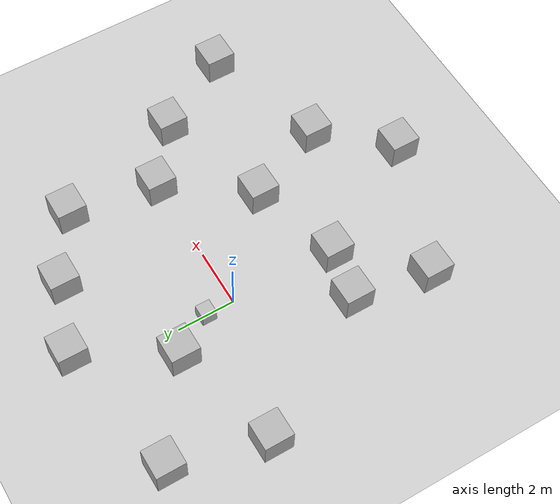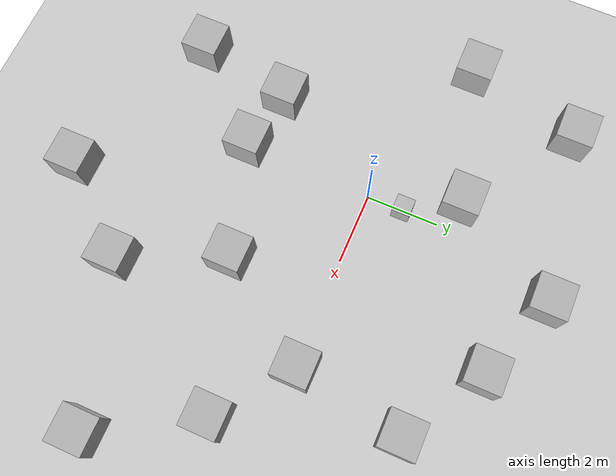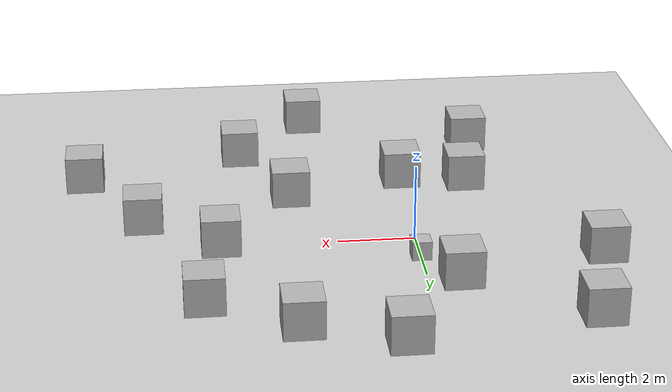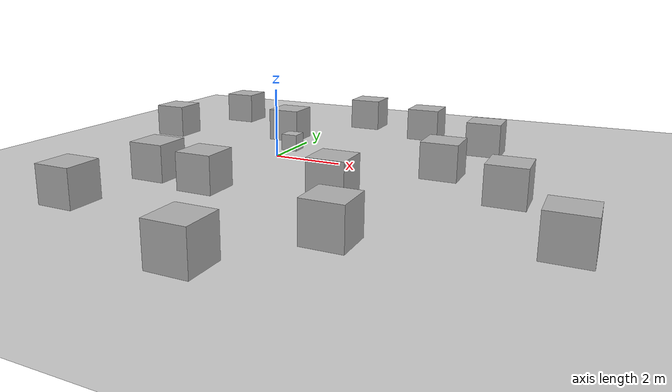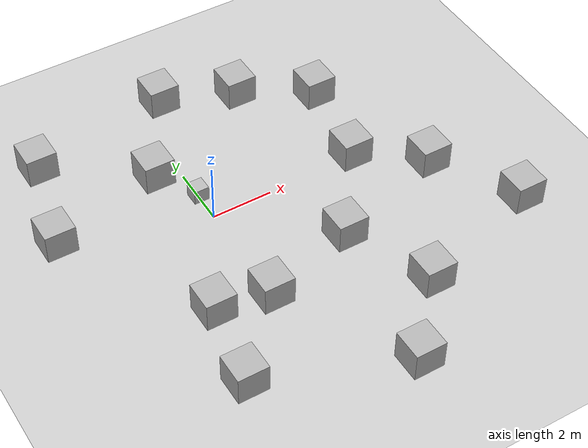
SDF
<sdf version='1.10'>
  <world name='empty'>
    <physics name='1ms' type='ignored'>
      <max_step_size>0.001</max_step_size>
      <real_time_factor>1.0</real_time_factor>
    </physics>
    <plugin name='gz::sim::systems::Physics' filename='gz-sim-physics-system'/>
    <plugin name='gz::sim::systems::UserCommands' filename='gz-sim-user-commands-system'/>
    <plugin name='gz::sim::systems::SceneBroadcaster' filename='gz-sim-scene-broadcaster-system'/>
    <plugin name='gz::sim::systems::Sensors' filename='gz-sim-sensors-system'>
      <render_engine>ogre2</render_engine>
    </plugin>
    <plugin name='gz::sim::systems::Contact' filename='gz-sim-contact-system'/>
    <gravity>0 0 -9.8000000000000007</gravity>
    <magnetic_field>5.5644999999999998e-06 2.2875799999999999e-05 -4.2388400000000002e-05</magnetic_field>
    <atmosphere type='adiabatic'/>
    <scene>
      <ambient>0.400000006 0.400000006 0.400000006 1</ambient>
      <background>0.699999988 0.699999988 0.699999988 1</background>
      <shadows>true</shadows>
    </scene>
    <model name='ground_plane'>
      <static>true</static>
      <link name='link'>
        <collision name='collision'>
          <geometry>
            <plane>
              <normal>0 0 1</normal>
              <size>100 100</size>
            </plane>
          </geometry>
          <surface>
            <friction>
              <ode>
                <mu>100.0</mu>
                <mu2>100.0</mu2>
              </ode>
            </friction>
            <bounce/>
            <contact/>
          </surface>
        </collision>
        <visual name='visual'>
          <geometry>
            <plane>
              <normal>0 0 1</normal>
              <size>100 100</size>
            </plane>
          </geometry>
          <material>
            <ambient>0.800000012 0.800000012 0.800000012 1</ambient>
            <diffuse>0.800000012 0.800000012 0.800000012 1</diffuse>
            <specular>0.800000012 0.800000012 0.800000012 1</specular>
          </material>
        </visual>
        <pose>0 0 0 0 0 0</pose>
        <inertial>
          <pose>0 0 0 0 0 0</pose>
          <mass>1</mass>
          <inertia>
            <ixx>1</ixx>
            <ixy>0</ixy>
            <ixz>0</ixz>
            <iyy>1</iyy>
            <iyz>0</iyz>
            <izz>1</izz>
          </inertia>
        </inertial>
        <enable_wind>false</enable_wind>
      </link>
      <pose>0 0 0 0 0 0</pose>
      <self_collide>false</self_collide>
    </model>

    <model name='box'>
      <pose>3.2825211979544768 4.4584938294825296 0.49999999990199806 6.2287739151293738e-22 9.3279666454713669e-22 -3.6315533669320137e-22</pose>
      <link name='box_link'>
        <inertial>
          <inertia>
            <ixx>0.16666</ixx>
            <ixy>0</ixy>
            <ixz>0</ixz>
            <iyy>0.16666</iyy>
            <iyz>0</iyz>
            <izz>0.16666</izz>
          </inertia>
          <mass>1</mass>
          <pose>0 0 0 0 0 0</pose>
        </inertial>
        <collision name='box_collision'>
          <geometry>
            <box>
              <size>1 1 1</size>
            </box>
          </geometry>
          <surface>
            <friction>
              <ode/>
            </friction>
            <bounce/>
            <contact/>
          </surface>
        </collision>
        <visual name='box_visual'>
          <geometry>
            <box>
              <size>1 1 1</size>
            </box>
          </geometry>
          <material>
            <ambient>0.300000012 0.300000012 0.300000012 1</ambient>
            <diffuse>0.699999988 0.699999988 0.699999988 1</diffuse>
            <specular>1 1 1 1</specular>
          </material>
        </visual>
        <pose>0 0 0 0 0 0</pose>
        <enable_wind>false</enable_wind>
      </link>
      <static>false</static>
      <self_collide>false</self_collide>
    </model>
    <model name='box_0'>
      <pose>3.0095113535359594 -2.6911043344628873 0.49999999990199806 6.2287739151293738e-22 9.3279666454713669e-22 -3.6315533669320137e-22</pose>
      <link name='box_link'>
        <inertial>
          <inertia>
            <ixx>0.16666</ixx>
            <ixy>0</ixy>
            <ixz>0</ixz>
            <iyy>0.16666</iyy>
            <iyz>0</iyz>
            <izz>0.16666</izz>
          </inertia>
          <mass>1</mass>
          <pose>0 0 0 0 0 0</pose>
        </inertial>
        <collision name='box_collision'>
          <geometry>
            <box>
              <size>1 1 1</size>
            </box>
          </geometry>
          <surface>
            <friction>
              <ode/>
            </friction>
            <bounce/>
            <contact/>
          </surface>
        </collision>
        <visual name='box_visual'>
          <geometry>
            <box>
              <size>1 1 1</size>
            </box>
          </geometry>
          <material>
            <ambient>0.300000012 0.300000012 0.300000012 1</ambient>
            <diffuse>0.699999988 0.699999988 0.699999988 1</diffuse>
            <specular>1 1 1 1</specular>
          </material>
        </visual>
        <pose>0 0 0 0 0 0</pose>
        <enable_wind>false</enable_wind>
      </link>
      <static>false</static>
      <self_collide>false</self_collide>
    </model>
    <model name='box_1'>
      <pose>-0.80716172694558086 2.3926742482846386 0.49999999990199806 6.2287739151293738e-22 9.3279666454713669e-22 -3.6315533669320137e-22</pose>
      <link name='box_link'>
        <inertial>
          <inertia>
            <ixx>0.16666</ixx>
            <ixy>0</ixy>
            <ixz>0</ixz>
            <iyy>0.16666</iyy>
            <iyz>0</iyz>
            <izz>0.16666</izz>
          </inertia>
          <mass>1</mass>
          <pose>0 0 0 0 0 0</pose>
        </inertial>
        <collision name='box_collision'>
          <geometry>
            <box>
              <size>1 1 1</size>
            </box>
          </geometry>
          <surface>
            <friction>
              <ode/>
            </friction>
            <bounce/>
            <contact/>
          </surface>
        </collision>
        <visual name='box_visual'>
          <geometry>
            <box>
              <size>1 1 1</size>
            </box>
          </geometry>
          <material>
            <ambient>0.300000012 0.300000012 0.300000012 1</ambient>
            <diffuse>0.699999988 0.699999988 0.699999988 1</diffuse>
            <specular>1 1 1 1</specular>
          </material>
        </visual>
        <pose>0 0 0 0 0 0</pose>
        <enable_wind>false</enable_wind>
      </link>
      <static>false</static>
      <self_collide>false</self_collide>
    </model>
    <model name="moving_box">
      <static>false</static>
      <pose>0 1 0.25 0 0 0</pose>

      <link name="link">
        <pose>0 0 0 0 0 0</pose>
        <collision name="collision">
          <geometry>
            <box><size>0.5 0.5 0.5</size></box>
          </geometry>
        </collision>
        <visual name="visual">
          <geometry>
            <box><size>0.5 0.5 0.5</size></box>
          </geometry>
        </visual>
      </link>

      <plugin name="linear_velocity_plugin" filename="libvelocity_control_system.so">
        <velocity>0.2 0 0</velocity> <!-- moves in x -->
      </plugin>
    </model>
    <model name='box_2'>
      <pose>-1.8130897160936543 -3.2811761110716766 0.49999999990199806 6.2287739151293738e-22 9.3279666454713669e-22 -3.6315533669320137e-22</pose>
      <link name='box_link'>
        <inertial>
          <inertia>
            <ixx>0.16666</ixx>
            <ixy>0</ixy>
            <ixz>0</ixz>
            <iyy>0.16666</iyy>
            <iyz>0</iyz>
            <izz>0.16666</izz>
          </inertia>
          <mass>1</mass>
          <pose>0 0 0 0 0 0</pose>
        </inertial>
        <collision name='box_collision'>
          <geometry>
            <box>
              <size>1 1 1</size>
            </box>
          </geometry>
          <surface>
            <friction>
              <ode/>
            </friction>
            <bounce/>
            <contact/>
          </surface>
        </collision>
        <visual name='box_visual'>
          <geometry>
            <box>
              <size>1 1 1</size>
            </box>
          </geometry>
          <material>
            <ambient>0.300000012 0.300000012 0.300000012 1</ambient>
            <diffuse>0.699999988 0.699999988 0.699999988 1</diffuse>
            <specular>1 1 1 1</specular>
          </material>
        </visual>
        <pose>0 0 0 0 0 0</pose>
        <enable_wind>false</enable_wind>
      </link>
      <static>false</static>
      <self_collide>false</self_collide>
    </model>
    <model name='box_3'>
      <pose>4.9897486266368256 0.073005996702854237 0.49999999990199806 6.2287739151293738e-22 9.3279666454713669e-22 -3.6315533669320137e-22</pose>
      <link name='box_link'>
        <inertial>
          <inertia>
            <ixx>0.16666</ixx>
            <ixy>0</ixy>
            <ixz>0</ixz>
            <iyy>0.16666</iyy>
            <iyz>0</iyz>
            <izz>0.16666</izz>
          </inertia>
          <mass>1</mass>
          <pose>0 0 0 0 0 0</pose>
        </inertial>
        <collision name='box_collision'>
          <geometry>
            <box>
              <size>1 1 1</size>
            </box>
          </geometry>
          <surface>
            <friction>
              <ode/>
            </friction>
            <bounce/>
            <contact/>
          </surface>
        </collision>
        <visual name='box_visual'>
          <geometry>
            <box>
              <size>1 1 1</size>
            </box>
          </geometry>
          <material>
            <ambient>0.300000012 0.300000012 0.300000012 1</ambient>
            <diffuse>0.699999988 0.699999988 0.699999988 1</diffuse>
            <specular>1 1 1 1</specular>
          </material>
        </visual>
        <pose>0 0 0 0 0 0</pose>
        <enable_wind>false</enable_wind>
      </link>
      <static>false</static>
      <self_collide>false</self_collide>
    </model>
    <model name='box_4'>
      <pose>5.5116897702114329 3.1066866635097634 0.49999999990199806 6.2287739151293738e-22 9.3279666454713669e-22 -3.6315533669320137e-22</pose>
      <link name='box_link'>
        <inertial>
          <inertia>
            <ixx>0.16666</ixx>
            <ixy>0</ixy>
            <ixz>0</ixz>
            <iyy>0.16666</iyy>
            <iyz>0</iyz>
            <izz>0.16666</izz>
          </inertia>
          <mass>1</mass>
          <pose>0 0 0 0 0 0</pose>
        </inertial>
        <collision name='box_collision'>
          <geometry>
            <box>
              <size>1 1 1</size>
            </box>
          </geometry>
          <surface>
            <friction>
              <ode/>
            </friction>
            <bounce/>
            <contact/>
          </surface>
        </collision>
        <visual name='box_visual'>
          <geometry>
            <box>
              <size>1 1 1</size>
            </box>
          </geometry>
          <material>
            <ambient>0.300000012 0.300000012 0.300000012 1</ambient>
            <diffuse>0.699999988 0.699999988 0.699999988 1</diffuse>
            <specular>1 1 1 1</specular>
          </material>
        </visual>
        <pose>0 0 0 0 0 0</pose>
        <enable_wind>false</enable_wind>
      </link>
      <static>false</static>
      <self_collide>false</self_collide>
    </model>
    <model name='box_5'>
      <pose>6.9363192313951068 -1.4158717909317309 0.49999999990199806 6.2287739151293738e-22 9.3279666454713669e-22 -3.6315533669320137e-22</pose>
      <link name='box_link'>
        <inertial>
          <inertia>
            <ixx>0.16666</ixx>
            <ixy>0</ixy>
            <ixz>0</ixz>
            <iyy>0.16666</iyy>
            <iyz>0</iyz>
            <izz>0.16666</izz>
          </inertia>
          <mass>1</mass>
          <pose>0 0 0 0 0 0</pose>
        </inertial>
        <collision name='box_collision'>
          <geometry>
            <box>
              <size>1 1 1</size>
            </box>
          </geometry>
          <surface>
            <friction>
              <ode/>
            </friction>
            <bounce/>
            <contact/>
          </surface>
        </collision>
        <visual name='box_visual'>
          <geometry>
            <box>
              <size>1 1 1</size>
            </box>
          </geometry>
          <material>
            <ambient>0.300000012 0.300000012 0.300000012 1</ambient>
            <diffuse>0.699999988 0.699999988 0.699999988 1</diffuse>
            <specular>1 1 1 1</specular>
          </material>
        </visual>
        <pose>0 0 0 0 0 0</pose>
        <enable_wind>false</enable_wind>
      </link>
      <static>false</static>
      <self_collide>false</self_collide>
    </model>
    <model name='box_6'>
      <pose>4.2167689271458535 -5.4939719424268745 0.49999999990199806 6.2287739151293738e-22 9.3279666454713669e-22 -3.6315533669320137e-22</pose>
      <link name='box_link'>
        <inertial>
          <inertia>
            <ixx>0.16666</ixx>
            <ixy>0</ixy>
            <ixz>0</ixz>
            <iyy>0.16666</iyy>
            <iyz>0</iyz>
            <izz>0.16666</izz>
          </inertia>
          <mass>1</mass>
          <pose>0 0 0 0 0 0</pose>
        </inertial>
        <collision name='box_collision'>
          <geometry>
            <box>
              <size>1 1 1</size>
            </box>
          </geometry>
          <surface>
            <friction>
              <ode/>
            </friction>
            <bounce/>
            <contact/>
          </surface>
        </collision>
        <visual name='box_visual'>
          <geometry>
            <box>
              <size>1 1 1</size>
            </box>
          </geometry>
          <material>
            <ambient>0.300000012 0.300000012 0.300000012 1</ambient>
            <diffuse>0.699999988 0.699999988 0.699999988 1</diffuse>
            <specular>1 1 1 1</specular>
          </material>
        </visual>
        <pose>0 0 0 0 0 0</pose>
        <enable_wind>false</enable_wind>
      </link>
      <static>false</static>
      <self_collide>false</self_collide>
    </model>
    <model name='box_7'>
      <pose>8.5048990453170035 -4.1580104498113712 0.49999999990199806 6.2287739151293738e-22 9.3279666454713669e-22 -3.6315533669320137e-22</pose>
      <link name='box_link'>
        <inertial>
          <inertia>
            <ixx>0.16666</ixx>
            <ixy>0</ixy>
            <ixz>0</ixz>
            <iyy>0.16666</iyy>
            <iyz>0</iyz>
            <izz>0.16666</izz>
          </inertia>
          <mass>1</mass>
          <pose>0 0 0 0 0 0</pose>
        </inertial>
        <collision name='box_collision'>
          <geometry>
            <box>
              <size>1 1 1</size>
            </box>
          </geometry>
          <surface>
            <friction>
              <ode/>
            </friction>
            <bounce/>
            <contact/>
          </surface>
        </collision>
        <visual name='box_visual'>
          <geometry>
            <box>
              <size>1 1 1</size>
            </box>
          </geometry>
          <material>
            <ambient>0.300000012 0.300000012 0.300000012 1</ambient>
            <diffuse>0.699999988 0.699999988 0.699999988 1</diffuse>
            <specular>1 1 1 1</specular>
          </material>
        </visual>
        <pose>0 0 0 0 0 0</pose>
        <enable_wind>false</enable_wind>
      </link>
      <static>false</static>
      <self_collide>false</self_collide>
    </model>
    <model name='box_8'>
      <pose>2.2536819893413247 -7.7205218091751924 0.49999999990199806 6.2287739151293738e-22 9.3279666454713669e-22 -3.6315533669320137e-22</pose>
      <link name='box_link'>
        <inertial>
          <inertia>
            <ixx>0.16666</ixx>
            <ixy>0</ixy>
            <ixz>0</ixz>
            <iyy>0.16666</iyy>
            <iyz>0</iyz>
            <izz>0.16666</izz>
          </inertia>
          <mass>1</mass>
          <pose>0 0 0 0 0 0</pose>
        </inertial>
        <collision name='box_collision'>
          <geometry>
            <box>
              <size>1 1 1</size>
            </box>
          </geometry>
          <surface>
            <friction>
              <ode/>
            </friction>
            <bounce/>
            <contact/>
          </surface>
        </collision>
        <visual name='box_visual'>
          <geometry>
            <box>
              <size>1 1 1</size>
            </box>
          </geometry>
          <material>
            <ambient>0.300000012 0.300000012 0.300000012 1</ambient>
            <diffuse>0.699999988 0.699999988 0.699999988 1</diffuse>
            <specular>1 1 1 1</specular>
          </material>
        </visual>
        <pose>0 0 0 0 0 0</pose>
        <enable_wind>false</enable_wind>
      </link>
      <static>false</static>
      <self_collide>false</self_collide>
    </model>
    <model name='box_9'>
      <pose>-0.10074070631819421 -3.6139812021936804 0.49999999990199806 6.2287739151293738e-22 9.3279666454713669e-22 -3.6315533669320137e-22</pose>
      <link name='box_link'>
        <inertial>
          <inertia>
            <ixx>0.16666</ixx>
            <ixy>0</ixy>
            <ixz>0</ixz>
            <iyy>0.16666</iyy>
            <iyz>0</iyz>
            <izz>0.16666</izz>
          </inertia>
          <mass>1</mass>
          <pose>0 0 0 0 0 0</pose>
        </inertial>
        <collision name='box_collision'>
          <geometry>
            <box>
              <size>1 1 1</size>
            </box>
          </geometry>
          <surface>
            <friction>
              <ode/>
            </friction>
            <bounce/>
            <contact/>
          </surface>
        </collision>
        <visual name='box_visual'>
          <geometry>
            <box>
              <size>1 1 1</size>
            </box>
          </geometry>
          <material>
            <ambient>0.300000012 0.300000012 0.300000012 1</ambient>
            <diffuse>0.699999988 0.699999988 0.699999988 1</diffuse>
            <specular>1 1 1 1</specular>
          </material>
        </visual>
        <pose>0 0 0 0 0 0</pose>
        <enable_wind>false</enable_wind>
      </link>
      <static>false</static>
      <self_collide>false</self_collide>
    </model>
    <model name='box_10'>
      <pose>0.91562372469700626 5.3545605943761965 0.49999999019105973 -1.9557291447421157e-08 1.617465412082452e-11 -1.9903855201047621e-07</pose>
      <link name='box_link'>
        <inertial>
          <inertia>
            <ixx>0.16666</ixx>
            <ixy>0</ixy>
            <ixz>0</ixz>
            <iyy>0.16666</iyy>
            <iyz>0</iyz>
            <izz>0.16666</izz>
          </inertia>
          <mass>1</mass>
          <pose>0 0 0 0 0 0</pose>
        </inertial>
        <collision name='box_collision'>
          <geometry>
            <box>
              <size>1 1 1</size>
            </box>
          </geometry>
          <surface>
            <friction>
              <ode/>
            </friction>
            <bounce/>
            <contact/>
          </surface>
        </collision>
        <visual name='box_visual'>
          <geometry>
            <box>
              <size>1 1 1</size>
            </box>
          </geometry>
          <material>
            <ambient>0.300000012 0.300000012 0.300000012 1</ambient>
            <diffuse>0.699999988 0.699999988 0.699999988 1</diffuse>
            <specular>1 1 1 1</specular>
          </material>
        </visual>
        <pose>0 0 0 0 0 0</pose>
        <enable_wind>false</enable_wind>
      </link>
      <static>false</static>
      <self_collide>false</self_collide>
    </model>
    <model name='box_11'>
      <pose>-2.3161640974482038 -5.9293982888426715 0.49999999990199806 6.2287739151293738e-22 9.3279666454713669e-22 -3.6315533669320137e-22</pose>
      <link name='box_link'>
        <inertial>
          <inertia>
            <ixx>0.16666</ixx>
            <ixy>0</ixy>
            <ixz>0</ixz>
            <iyy>0.16666</iyy>
            <iyz>0</iyz>
            <izz>0.16666</izz>
          </inertia>
          <mass>1</mass>
          <pose>0 0 0 0 0 0</pose>
        </inertial>
        <collision name='box_collision'>
          <geometry>
            <box>
              <size>1 1 1</size>
            </box>
          </geometry>
          <surface>
            <friction>
              <ode/>
            </friction>
            <bounce/>
            <contact/>
          </surface>
        </collision>
        <visual name='box_visual'>
          <geometry>
            <box>
              <size>1 1 1</size>
            </box>
          </geometry>
          <material>
            <ambient>0.300000012 0.300000012 0.300000012 1</ambient>
            <diffuse>0.699999988 0.699999988 0.699999988 1</diffuse>
            <specular>1 1 1 1</specular>
          </material>
        </visual>
        <pose>0 0 0 0 0 0</pose>
        <enable_wind>false</enable_wind>
      </link>
      <static>false</static>
      <self_collide>false</self_collide>
    </model>
    <model name='box_12'>
      <pose>-3.7966963060886938 4.535379891577386 0.49999999990199806 6.2287739151293738e-22 9.3279666454713669e-22 -3.6315533669320137e-22</pose>
      <link name='box_link'>
        <inertial>
          <inertia>
            <ixx>0.16666</ixx>
            <ixy>0</ixy>
            <ixz>0</ixz>
            <iyy>0.16666</iyy>
            <iyz>0</iyz>
            <izz>0.16666</izz>
          </inertia>
          <mass>1</mass>
          <pose>0 0 0 0 0 0</pose>
        </inertial>
        <collision name='box_collision'>
          <geometry>
            <box>
              <size>1 1 1</size>
            </box>
          </geometry>
          <surface>
            <friction>
              <ode/>
            </friction>
            <bounce/>
            <contact/>
          </surface>
        </collision>
        <visual name='box_visual'>
          <geometry>
            <box>
              <size>1 1 1</size>
            </box>
          </geometry>
          <material>
            <ambient>0.300000012 0.300000012 0.300000012 1</ambient>
            <diffuse>0.699999988 0.699999988 0.699999988 1</diffuse>
            <specular>1 1 1 1</specular>
          </material>
        </visual>
        <pose>0 0 0 0 0 0</pose>
        <enable_wind>false</enable_wind>
      </link>
      <static>false</static>
      <self_collide>false</self_collide>
    </model>
    <model name='box_13'>
      <pose>-4.6219485049614164 1.3841368349990877 0.49999999990199806 6.2287739151293738e-22 9.3279666454713669e-22 -3.6315533669320137e-22</pose>
      <link name='box_link'>
        <inertial>
          <inertia>
            <ixx>0.16666</ixx>
            <ixy>0</ixy>
            <ixz>0</ixz>
            <iyy>0.16666</iyy>
            <iyz>0</iyz>
            <izz>0.16666</izz>
          </inertia>
          <mass>1</mass>
          <pose>0 0 0 0 0 0</pose>
        </inertial>
        <collision name='box_collision'>
          <geometry>
            <box>
              <size>1 1 1</size>
            </box>
          </geometry>
          <surface>
            <friction>
              <ode/>
            </friction>
            <bounce/>
            <contact/>
          </surface>
        </collision>
        <visual name='box_visual'>
          <geometry>
            <box>
              <size>1 1 1</size>
            </box>
          </geometry>
          <material>
            <ambient>0.300000012 0.300000012 0.300000012 1</ambient>
            <diffuse>0.699999988 0.699999988 0.699999988 1</diffuse>
            <specular>1 1 1 1</specular>
          </material>
        </visual>
        <pose>0 0 0 0 0 0</pose>
        <enable_wind>false</enable_wind>
      </link>
      <static>false</static>
      <self_collide>false</self_collide>
    </model>
    <light name='sun' type='directional'>
      <pose>0 0 10 0 0 0</pose>
      <cast_shadows>true</cast_shadows>
      <intensity>1</intensity>
      <direction>-0.5 0.10000000000000001 -0.90000000000000002</direction>
      <diffuse>0.800000012 0.800000012 0.800000012 1</diffuse>
      <specular>0.200000003 0.200000003 0.200000003 1</specular>
      <attenuation>
        <range>1000</range>
        <linear>0.01</linear>
        <constant>0.90000000000000002</constant>
        <quadratic>0.001</quadratic>
      </attenuation>
      <spot>
        <inner_angle>0</inner_angle>
        <outer_angle>0</outer_angle>
        <falloff>0</falloff>
      </spot>
    </light>
  </world>
</sdf>
